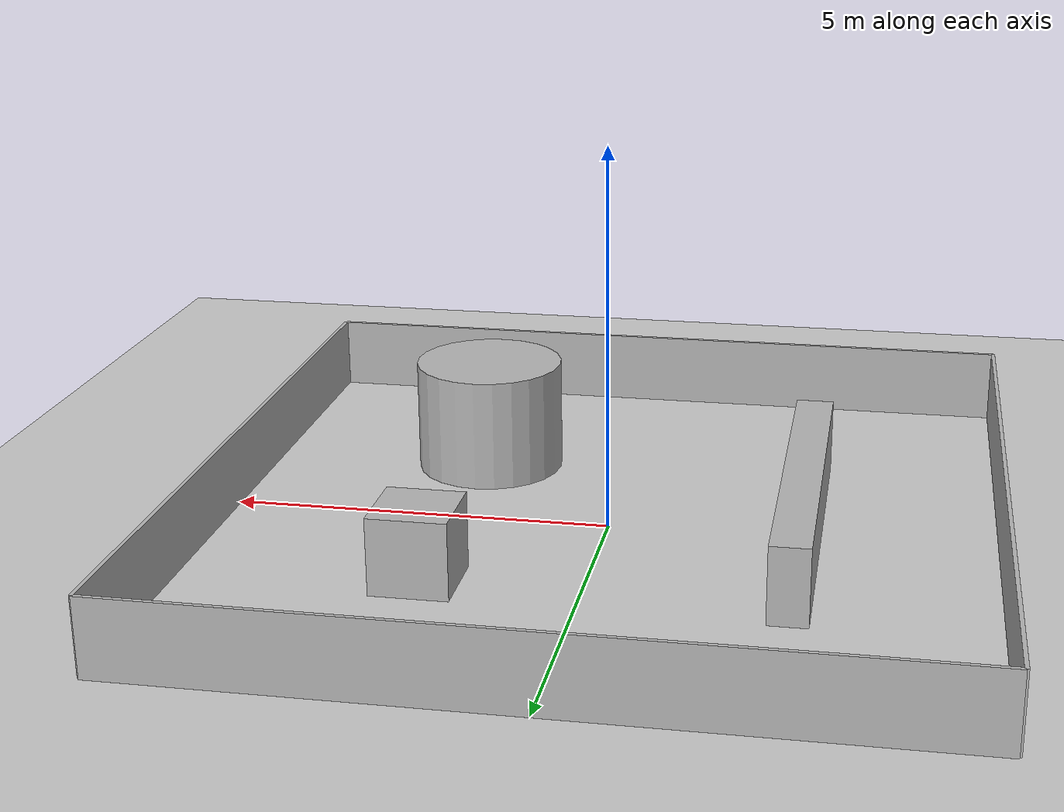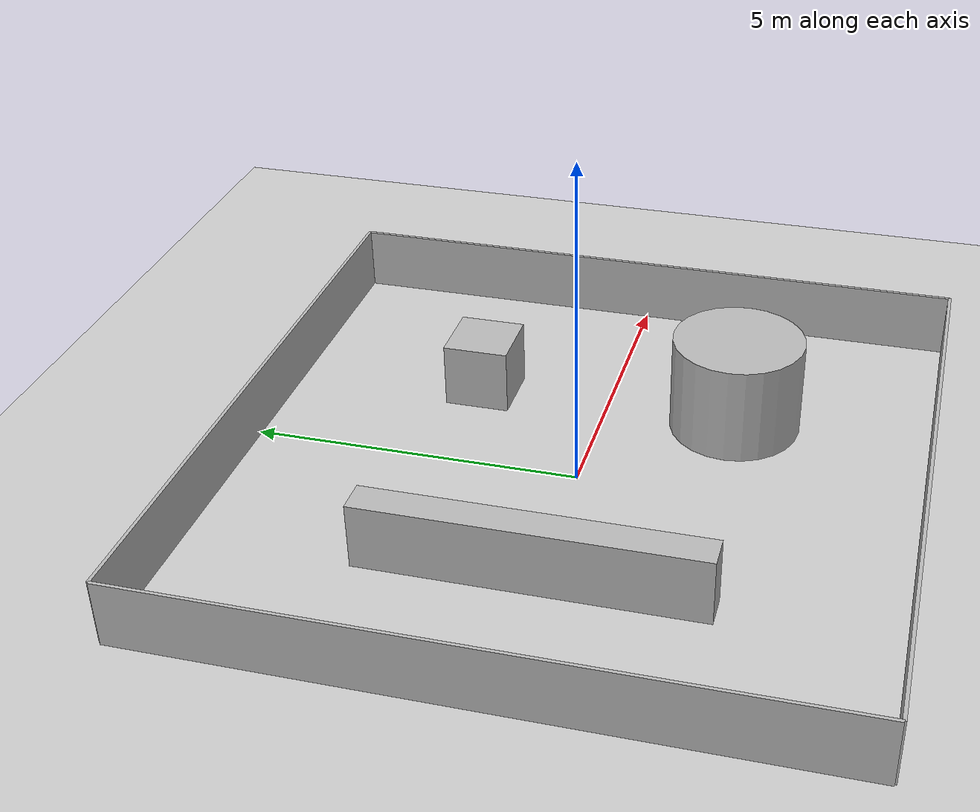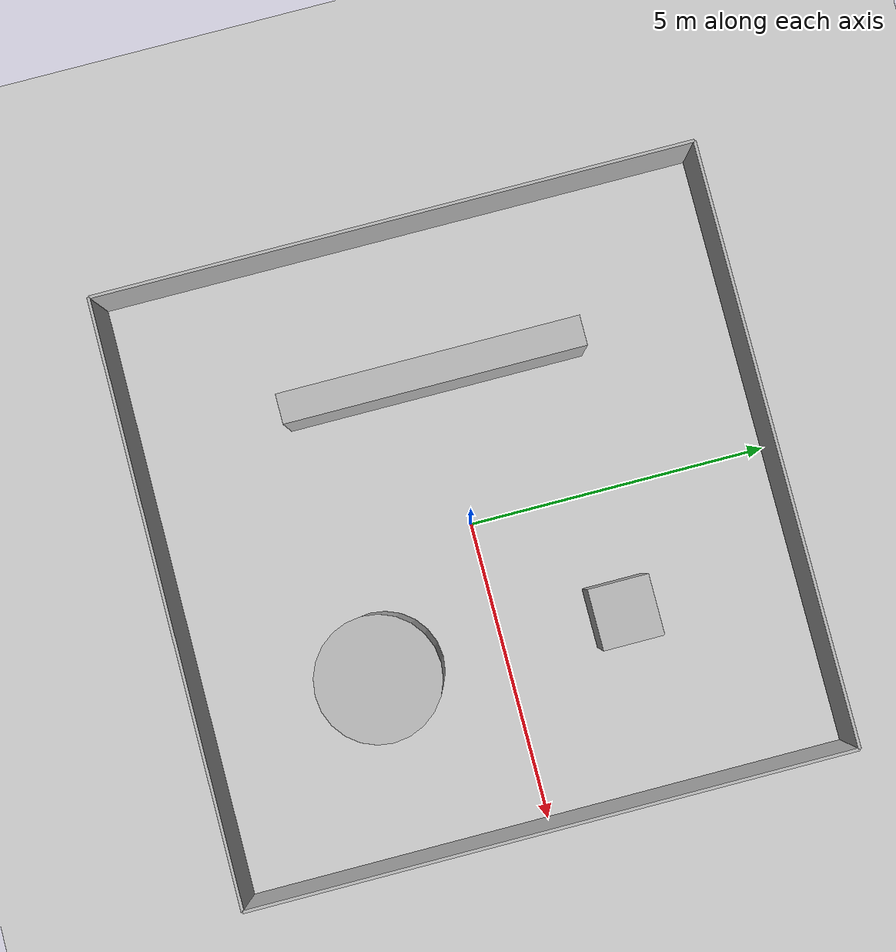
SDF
<?xml version="1.0"?>
<!--
SPDX-FileCopyrightText: Alliander N. V.

SPDX-License-Identifier: Apache-2.0
-->
<sdf version="1.6">
  <world name="walls">
    <physics name="1ms" type="ignored">
      <max_step_size>0.001</max_step_size>
      <real_time_factor>1.0</real_time_factor>
    </physics>

    <plugin filename="ignition-gazebo-imu-system" name="gz::sim::systems::Imu" />
    <plugin filename="gz-sim-navsat-system" name="gz::sim::systems::NavSat" />
    <plugin filename="gz-sim-physics-system" name="gz::sim::systems::Physics" />
    <plugin filename="gz-sim-user-commands-system" name="gz::sim::systems::UserCommands" />
    <plugin filename="gz-sim-scene-broadcaster-system" name="gz::sim::systems::SceneBroadcaster" />
    <plugin filename="gz-sim-contact-system" name="gz::sim::systems::Contact" />
    <plugin filename="gz-sim-sensors-system" name="gz::sim::systems::Sensors">
      <render_engine>ogre2</render_engine>
    </plugin>

    <light type="directional" name="sun">
      <cast_shadows>true</cast_shadows>
      <pose>0 0 10 0 0 0</pose>
      <diffuse>0.8 0.8 0.8 1</diffuse>
      <specular>0.2 0.2 0.2 1</specular>
      <attenuation>
        <range>1000</range>
        <constant>0.9</constant>
        <linear>0.01</linear>
        <quadratic>0.001</quadratic>
      </attenuation>
      <direction>-0.5 0.1 -0.9</direction>
    </light>

    <model name="ground_plane">
      <static>true</static>
      <link name="link">
        <collision name="collision">
          <geometry>
            <plane>
              <normal>0 0 1</normal>
              <size>100 100</size>
            </plane>
          </geometry>
        </collision>
        <visual name="visual">
          <geometry>
            <plane>
              <normal>0 0 1</normal>
              <size>100 100</size>
            </plane>
          </geometry>
          <material>
            <ambient>0.8 0.8 0.8 1</ambient>
            <diffuse>0.8 0.8 0.8 1</diffuse>
            <specular>0.8 0.8 0.8 1</specular>
          </material>
        </visual>
      </link>
    </model>

    <model name='wall_front'>
      <static>true</static>
      <pose>5 0 0.5 0 0 0</pose>
      <link name='box'>
        <visual name='visual'>
          <geometry>
            <box>
              <size>0.05 10.0 1</size>
            </box>
          </geometry>
        </visual>
        <collision name='collision'>
          <geometry>
            <box>
              <size>0.05 10.0 1</size>
            </box>
          </geometry>
        </collision>
      </link>
    </model>

    <model name='wall_back'>
      <static>true</static>
      <pose>-5 0 0.5 0 0 0</pose>
      <link name='box'>
        <visual name='visual'>
          <geometry>
            <box>
              <size>0.05 10.0 1</size>
            </box>
          </geometry>
        </visual>
        <collision name='collision'>
          <geometry>
            <box>
              <size>0.05 10.0 1</size>
            </box>
          </geometry>
        </collision>
      </link>
    </model>

    <model name='wall_left'>
      <static>true</static>
      <pose>0 5 0.5 0 0 0</pose>
      <link name='box'>
        <visual name='visual'>
          <geometry>
            <box>
              <size>10.0 0.05 1</size>
            </box>
          </geometry>
        </visual>
        <collision name='collision'>
          <geometry>
            <box>
              <size>10.0 0.05 1</size>
            </box>
          </geometry>
        </collision>
      </link>
    </model>

    <model name='wall_right'>
      <static>true</static>
      <pose>0 -5 0.5 0 0 0</pose>
      <link name='box'>
        <visual name='visual'>
          <geometry>
            <box>
              <size>10.0 0.05 1</size>
            </box>
          </geometry>
        </visual>
        <collision name='collision'>
          <geometry>
            <box>
              <size>10.0 0.05 1</size>
            </box>
          </geometry>
        </collision>
      </link>
    </model>

    <model name='box_obstacle'>
      <static>true</static>
      <pose>2 2 0.5 0 0 0</pose>
      <link name='box'>
        <visual name='visual'>
          <geometry>
            <box>
              <size>1 1 1</size>
            </box>
          </geometry>
        </visual>
        <collision name='collision'>
          <geometry>
            <box>
              <size>1 1 1</size>
            </box>
          </geometry>
        </collision>
      </link>
    </model>

    <model name='cylinder_obstacle'>
      <static>true</static>
      <pose>2 -2 0.5 0 0 0</pose>
      <link name='box'>
        <visual name='visual'>
          <geometry>
            <cylinder>
              <radius>1</radius>
              <length>2</length>
            </cylinder>
          </geometry>
        </visual>
        <collision name='collision'>
          <geometry>
            <cylinder>
              <radius>1</radius>
              <length>2</length>
            </cylinder>
          </geometry>
        </collision>
      </link>
    </model>

    <model name='wall_obstacle'>
      <static>true</static>
      <pose>-2.5 0 0.5 0 0 0</pose>
      <link name='box'>
        <visual name='visual'>
          <geometry>
            <box>
              <size>0.5 5 1</size>
            </box>
          </geometry>
        </visual>
        <collision name='collision'>
          <geometry>
            <box>
              <size>0.5 5 1</size>
            </box>
          </geometry>
        </collision>
      </link>
    </model>

  </world>
</sdf>
